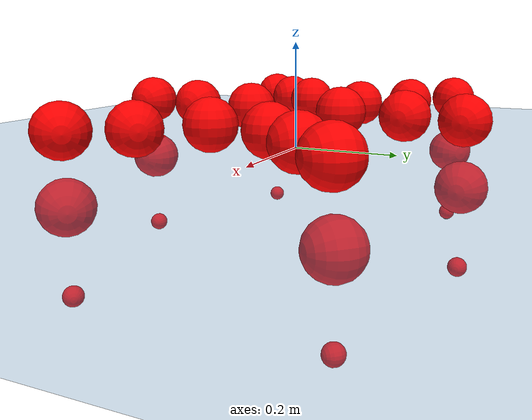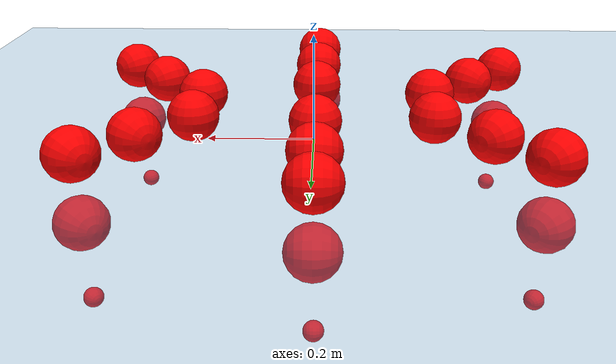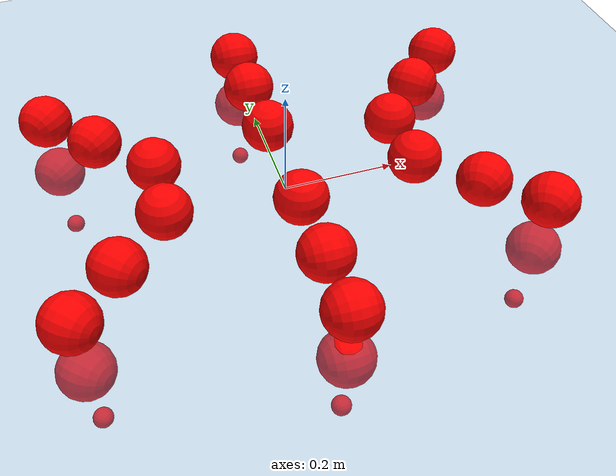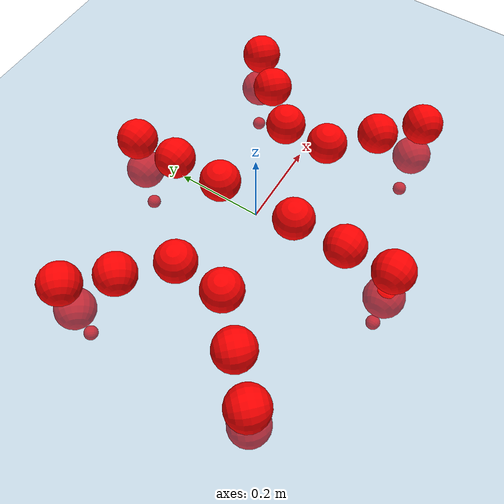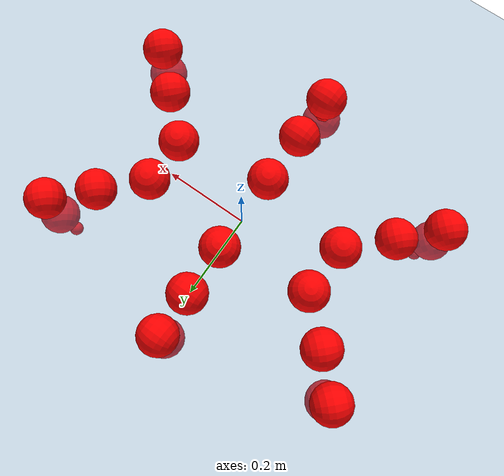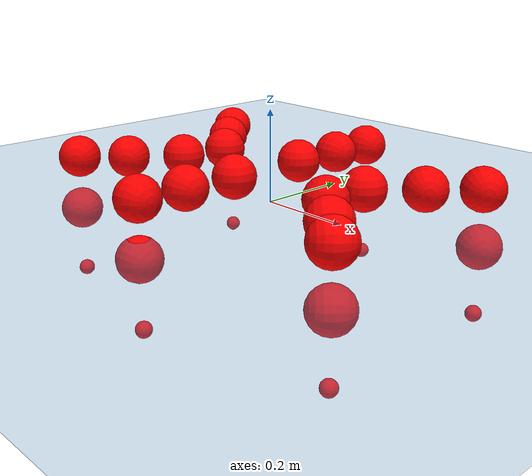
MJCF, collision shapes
<mujoco model="Golem">
  <compiler angle="radian" assetdir="assets" balanceinertia="true" inertiafromgeom="false"/>

  <option timestep="0.005" density="1.2" viscosity="2e-05"/>

  <size nkey="1"/>

  <visual>
    <quality shadowsize="8192"/>
    <map shadowclip="0.5"/>
  </visual>

  <default>
    <default class="/">
      <joint armature="0.01" damping="0.01" frictionloss="0.01"/>
      <geom contype="0" conaffinity="0" group="1" solref="-1000 -80"/>
      <site size="0.01 0.005 0.005" group="5"/>
      <general forcelimited="true" biastype="affine" gainprm="25" biasprm="0 -25 -0.5"/>
      <default class="visual">
        <geom type="mesh" group="2"/>
      </default>
      <default class="collision">
        <geom group="3"/>
      </default>
      <default class="foot">
        <geom size="0.01 0 0" condim="6" group="4" priority="1" solimp="0.015 1 0.01"/>
      </default>
      <default class="reward_collision_sphere">
        <geom group="5" rgba="1 0 0 1"/>
      </default>
    </default>
  </default>

  <asset>
    <texture type="skybox" colorspace="auto" name="//unnamed_texture_0" builtin="gradient" rgb1="0.95 0.95 0.95" rgb2="0.95 0.95 0.95" width="100" height="600"/>
    <texture type="2d" colorspace="auto" name="texplane" builtin="checker" rgb1="0.345 0.575 0.748" rgb2="0.345 0.575 0.748" markrgb="1 1 1" width="512" height="512"/>
    <material name="MatPlane" class="/" texture="texplane" texuniform="true" texrepeat="2 2" specular="0.9"/>
    <mesh name="body" class="/" file="body.stl" scale="0.001 0.001 0.001"/>
    <mesh name="coxa" class="/" file="coxa.stl" scale="0.001 0.001 0.001"/>
    <mesh name="femur" class="/" file="femur.stl" scale="0.001 0.001 0.001"/>
    <mesh name="tibia" class="/" file="tibia.stl" scale="0.001 0.001 0.001"/>
    <mesh name="tarsus" class="/" file="tarsus.stl" scale="0.001 0.001 0.001"/>
  </asset>

  <worldbody>
    <geom name="floor" class="/" size="100 100 0.125" type="plane" group="0" material="MatPlane"/>
    <light name="toplight_shadow" class="/" pos="0 0 5" dir="0.0990148 0.0990148 -0.990148" type="directional" ambient="0.04 0.04 0.04" diffuse="0.55 0.55 0.55" specular="0.12 0.12 0.12"/>
    <light name="toplight_fill" class="/" pos="0 0 5" dir="0.0990148 0.0990148 -0.990148" type="directional" castshadow="false" ambient="0.04 0.04 0.04" diffuse="0.3 0.3 0.3" specular="0.08 0.08 0.08"/>
    <body name="trunk" pos="-0.00233903 -0.00258842 0.00114054" quat="0.999999 0.00114539 0.000556397 0.000517544">
      <inertial pos="0.00268963 0.000275476 0.000223459" quat="0.99992 -0.0016654 -0.00996308 -0.00764176" mass="5.97925" diaginertia="0.0500732 0.0119556 0.0153129"/>
      <joint name="//unnamed_joint_0" type="free"/>
      <geom name="//unnamed_geom_1" class="/" pos="0 0 0.0689017" quat="1 0 0 0" type="mesh" rgba="0.9 0.9 0.9 1" mesh="body"/>
      <site name="imu" class="/" pos="0.184445 0.0117451 0.110031" size="0.0115885"/>
      <camera name="track" class="/" pos="0 -2.05239 0" quat="0.707107 0.707107 0 0" mode="trackcom"/>
      <camera name="ego_camera" class="/" pos="0.178588 0 0.107659" quat="-0.5 -0.5 0.5 0.5"/>
      <body name="coxa_RR" pos="-0.246522 -0.086299 0.0706602" quat="0.382598 -0.000846744 -0.000699572 -0.923914">
        <inertial pos="-0.000143563 0.000579436 0.00257363" quat="0.999997 0.00190555 0.000714038 0.000985972" mass="0.318173" diaginertia="0.0485807 0.0115605 0.0150978"/>
        <joint name="coxa_joint_RR" class="/" pos="0 0 0" axis="0.00104718 0.00502365 -0.999987" range="-3.13007 3.08467" armature="0.0111311" damping="0.00632835" frictionloss="0.011829"/>
        <geom name="//unnamed_geom_2" class="/" type="mesh" rgba="0.2 0.2 0.2 1" mesh="coxa"/>
        <geom name="//unnamed_geom_3" class="reward_collision_sphere" size="0.0463539" pos="-0.0412127 0 0"/>
        <body name="femur_RR" pos="0.0828746 -0.00114938 -0.00402834" quat="0.500567 -0.499894 0.499976 0.499562">
          <inertial pos="0.000616429 0.000311325 0.00160567" quat="0.999988 -0.0043039 0.00207535 -0.000674193" mass="0.306811" diaginertia="0.0486156 0.0113133 0.0142288"/>
          <joint name="femur_joint_RR" class="/" pos="0 0 0" axis="-0.01031 -0.00823249 -0.999913" range="-3.1816 3.1316" armature="0.0120841" damping="0.0228352" frictionloss="0.0118569"/>
          <geom name="//unnamed_geom_4" class="/" type="mesh" rgba="0.9 0.9 0.9 1" mesh="femur"/>
          <geom name="//unnamed_geom_5" class="reward_collision_sphere" size="0.0463539"/>
          <body name="tibia_RR" pos="0.00121101 -0.111431 0.00100601" quat="-0.000189412 1 -2.99033e-05 6.46327e-05">
            <inertial pos="-0.00066435 0.000662987 -0.000872505" quat="0.999915 0.0119632 0.00490219 0.00162778" mass="0.313599" diaginertia="0.0469206 0.0113533 0.0141285"/>
            <joint name="tibia_joint_RR" class="/" pos="0 0 0" axis="0.00542589 0.00543365 0.999971" range="-3.19081 3.13175" armature="0.0100202" damping="0" frictionloss="0.0106352"/>
            <geom name="//unnamed_geom_6" class="/" type="mesh" rgba="0.2 0.2 0.2 1" mesh="tibia"/>
            <geom name="//unnamed_geom_7" class="reward_collision_sphere" size="0.0463539"/>
            <body name="tarsus_RR" pos="0.121324 0.0025982 -0.00130545" quat="1 0.000304046 -1.78098e-05 6.35945e-05">
              <inertial pos="0.0807745 0.00012953 -0.0012284" quat="0.497157 0.503773 0.499783 0.499264" mass="0.29504" diaginertia="0.0491062 0.0109076 0.0141497"/>
              <joint name="tarsus_joint_RR" class="/" pos="0 0 0" axis="0.00458646 0.00446761 0.99998" stiffness="0.00197812" range="-3.125 3.09112" armature="0.00996963" damping="0.040625" frictionloss="0.0128084"/>
              <geom name="//unnamed_geom_8" class="/" type="mesh" rgba="0.9 0.9 0.9 1" mesh="tarsus"/>
              <geom name="foot_1" class="foot" size="0.0112374" pos="0.153861 0 0" quat="0 -0.707107 0 0.707107"/>
              <geom name="//unnamed_geom_10" class="reward_collision_sphere" size="0.0463539"/>
              <geom name="//unnamed_geom_11" class="reward_collision_sphere" size="0.0173827" pos="0.147679 0 0"/>
              <site name="foot_1" class="foot" pos="0.153861 0 0" quat="0 -0.707107 0 0.707107" size="0.0115885"/>
            </body>
          </body>
        </body>
      </body>
      <body name="coxa_RM" pos="-0.0012075 -0.135881 0.0739091" quat="0.706824 8.69115e-05 -0.00022944 -0.707389">
        <inertial pos="-0.00127946 -0.000771939 -0.000144166" quat="0.999959 -0.00613162 -0.00664974 0.000817367" mass="0.310525" diaginertia="0.0480157 0.0113787 0.013791"/>
        <joint name="coxa_joint_RM" class="/" pos="0 0 0" axis="-0.000119563 0.00788232 -0.999969" stiffness="0.00632377" range="-3.16489 3.13781" armature="0.0118674" damping="0.0129774" frictionloss="0.00999625"/>
        <geom name="//unnamed_geom_12" class="/" type="mesh" rgba="0.2 0.2 0.2 1" mesh="coxa"/>
        <geom name="//unnamed_geom_13" class="reward_collision_sphere" size="0.0463539" pos="-0.0412127 0 0"/>
        <body name="femur_RM" pos="0.0822118 -0.00126414 0.00216585" quat="0.500496 -0.500035 0.499084 0.500384">
          <inertial pos="-7.40847e-05 -0.000150539 -0.00012326" quat="0.999995 -0.0026557 -0.00140173 0.00096589" mass="0.304003" diaginertia="0.0500224 0.0111643 0.014299"/>
          <joint name="femur_joint_RM" class="/" pos="0 0 0" axis="0.00492138 -0.00386261 -0.99998" range="-3.15969 3.136" armature="0.0130083" damping="0.0258056" frictionloss="0.0116948"/>
          <geom name="//unnamed_geom_14" class="/" type="mesh" rgba="0.9 0.9 0.9 1" mesh="femur"/>
          <geom name="//unnamed_geom_15" class="reward_collision_sphere" size="0.0463539"/>
          <body name="tibia_RM" pos="-0.00248333 -0.110054 -0.000842211" quat="-0.000117729 1 0.000136899 0.000276">
            <inertial pos="0.000780336 0.0028753 -0.00253755" quat="0.999993 -0.00130169 -0.000178954 -0.00346781" mass="0.328947" diaginertia="0.0510126 0.0113556 0.0148919"/>
            <joint name="tibia_joint_RM" class="/" pos="0 0 0" axis="-0.00125796 0.0105368 0.999944" range="-3.15931 3.08523" armature="0.011738" damping="0.012623" frictionloss="0.0100607"/>
            <geom name="//unnamed_geom_16" class="/" type="mesh" rgba="0.2 0.2 0.2 1" mesh="tibia"/>
            <geom name="//unnamed_geom_17" class="reward_collision_sphere" size="0.0463539"/>
            <body name="tarsus_RM" pos="0.120687 0.00216289 0.00139065" quat="1 -0.000323475 -3.0243e-05 0.000336602">
              <inertial pos="0.0816102 -0.00182758 0.000647878" quat="0.506011 0.496599 0.498301 0.499037" mass="0.319068" diaginertia="0.0499731 0.0117559 0.0152295"/>
              <joint name="tarsus_joint_RM" class="/" pos="0 0 0" axis="0.00844703 0.00208756 0.999962" stiffness="0.00488946" range="-3.15283 3.13648" armature="0.0115909" damping="0.00847798" frictionloss="0.0112275"/>
              <geom name="//unnamed_geom_18" class="/" type="mesh" rgba="0.9 0.9 0.9 1" mesh="tarsus"/>
              <geom name="foot_2" class="foot" size="0.0115462" pos="0.153861 0 0" quat="0 -0.707107 0 0.707107"/>
              <geom name="//unnamed_geom_20" class="reward_collision_sphere" size="0.0463539"/>
              <geom name="//unnamed_geom_21" class="reward_collision_sphere" size="0.0173827" pos="0.147679 0 0"/>
              <site name="foot_2" class="foot" pos="0.153861 0 0" quat="0 -0.707107 0 0.707107" size="0.0115885"/>
            </body>
          </body>
        </body>
      </body>
      <body name="coxa_RF" pos="0.2451 -0.0848008 0.0682643" quat="0.923948 -7.44013e-05 4.26746e-05 -0.382518">
        <inertial pos="0.00130385 0.00126891 -0.000673696" quat="0.999986 -0.000255143 -0.00186091 -0.0050286" mass="0.313208" diaginertia="0.0521736 0.0117619 0.0148637"/>
        <joint name="coxa_joint_RF" class="/" pos="0 0 0" axis="-0.00174612 0.00140266 -0.999997" range="-3.19387 3.13226" armature="0.0125449" damping="0.0110589" frictionloss="0.0101736"/>
        <geom name="//unnamed_geom_22" class="/" type="mesh" rgba="0.2 0.2 0.2 1" mesh="coxa"/>
        <geom name="//unnamed_geom_23" class="reward_collision_sphere" size="0.0463539" pos="-0.0412127 0 0"/>
        <body name="femur_RF" pos="0.0811904 0.00178973 0.000213988" quat="0.500648 -0.499204 0.500434 0.499712">
          <inertial pos="0.00265895 -0.000625969 0.00271358" quat="0.999997 -0.00131407 -0.000502858 -0.00196173" mass="0.303936" diaginertia="0.0506325 0.0112692 0.0145269"/>
          <joint name="femur_joint_RF" class="/" pos="0 0 0" axis="0.0123716 0.00345054 -0.999918" stiffness="0.00590738" range="-3.12186 3.09238" armature="0.0116945" damping="0.0149827" frictionloss="0.0104873"/>
          <geom name="//unnamed_geom_24" class="/" type="mesh" rgba="0.9 0.9 0.9 1" mesh="femur"/>
          <geom name="//unnamed_geom_25" class="reward_collision_sphere" size="0.0463539"/>
          <body name="tibia_RF" pos="-0.00311287 -0.110057 0.00103036" quat="-0.000281565 1 -8.78336e-06 -2.25519e-05">
            <inertial pos="0.000122749 -0.00149324 0.000398399" quat="0.999913 0.0110476 0.00665548 -0.00290804" mass="0.318051" diaginertia="0.0489375 0.0112672 0.0142614"/>
            <joint name="tibia_joint_RF" class="/" pos="0 0 0" axis="0.00250267 -0.0063253 0.999977" stiffness="0.000199649" range="-3.15562 3.09855" armature="0.0115896" damping="0.0294183" frictionloss="0.0111024"/>
            <geom name="//unnamed_geom_26" class="/" type="mesh" rgba="0.2 0.2 0.2 1" mesh="tibia"/>
            <geom name="//unnamed_geom_27" class="reward_collision_sphere" size="0.0463539"/>
            <body name="tarsus_RF" pos="0.120056 0.00032341 -0.000506615" quat="0.999999 -0.000628646 -0.000965003 0.00024731">
              <inertial pos="0.082592 -0.000133284 0.00127368" quat="0.497069 0.502894 0.495271 0.504705" mass="0.319485" diaginertia="0.0503498 0.0111777 0.0141473"/>
              <joint name="tarsus_joint_RF" class="/" pos="0 0 0" axis="0.00650555 0.00300688 0.999974" range="-3.1956 3.14584" armature="0.0124758" damping="0.00302101" frictionloss="0.0107916"/>
              <geom name="//unnamed_geom_28" class="/" type="mesh" rgba="0.9 0.9 0.9 1" mesh="tarsus"/>
              <geom name="foot_3" class="foot" size="0.0115678" pos="0.153861 0 0" quat="0 -0.707107 0 0.707107"/>
              <geom name="//unnamed_geom_30" class="reward_collision_sphere" size="0.0463539"/>
              <geom name="//unnamed_geom_31" class="reward_collision_sphere" size="0.0173827" pos="0.147679 0 0"/>
              <site name="foot_3" class="foot" pos="0.153861 0 0" quat="0 -0.707107 0 0.707107" size="0.0115885"/>
            </body>
          </body>
        </body>
      </body>
      <body name="coxa_LR" pos="-0.242511 0.0887619 0.0666329" quat="0.382693 0.000123518 0.000144743 0.923876">
        <inertial pos="-0.000400573 0.00160161 0.00107511" quat="0.999967 0.00237857 -0.00450438 0.00639246" mass="0.314379" diaginertia="0.050119 0.0116051 0.0150806"/>
        <joint name="coxa_joint_LR" class="/" pos="0 0 0" axis="-0.00219008 -0.00161152 -0.999996" stiffness="0.00763479" range="-3.18316 3.11724" armature="0.012595" damping="0.010611" frictionloss="0.0121933"/>
        <geom name="//unnamed_geom_32" class="/" type="mesh" rgba="0.2 0.2 0.2 1" mesh="coxa"/>
        <geom name="//unnamed_geom_33" class="reward_collision_sphere" size="0.0463539" pos="-0.0412127 0 0"/>
        <body name="femur_LR" pos="0.0819866 0.0019221 0.00114914" quat="0.499848 -0.500065 0.500078 0.500008">
          <inertial pos="0.00110356 0.000302059 0.000217798" quat="0.999912 0.0115582 -0.00550664 0.00332942" mass="0.30073" diaginertia="0.0456786 0.0108042 0.0138999"/>
          <joint name="femur_joint_LR" class="/" pos="0 0 0" axis="-0.0105356 -0.00131712 0.999944" range="-3.15804 3.10585" armature="0.0127877" damping="0.00323993" frictionloss="0.0102895"/>
          <geom name="//unnamed_geom_34" class="/" type="mesh" rgba="0.9 0.9 0.9 1" mesh="femur"/>
          <geom name="//unnamed_geom_35" class="reward_collision_sphere" size="0.0463539"/>
          <body name="tibia_LR" pos="-0.000290253 -0.111364 -0.00282733" quat="0.00038707 1 0.000734909 0.000169787">
            <inertial pos="0.00243509 -0.000310123 -0.00014225" quat="0.999973 0.00303291 -0.00662144 0.00038057" mass="0.305979" diaginertia="0.0485271 0.0116557 0.0147872"/>
            <joint name="tibia_joint_LR" class="/" pos="0 0 0" axis="0.00800166 -0.00378654 -0.999961" stiffness="0.0053811" range="-3.13174 3.13371" armature="0.0130612" damping="0.00979279" frictionloss="0.0131292"/>
            <geom name="//unnamed_geom_36" class="/" type="mesh" rgba="0.2 0.2 0.2 1" mesh="tibia"/>
            <geom name="//unnamed_geom_37" class="reward_collision_sphere" size="0.0463539"/>
            <body name="tarsus_LR" pos="0.122118 -0.0012617 -0.00236982" quat="0.999999 -0.000372848 -0.000123369 -0.00130016">
              <inertial pos="0.0799724 -0.00228132 -0.00255411" quat="0.495045 0.504103 0.508985 0.491675" mass="0.318681" diaginertia="0.0496818 0.0115984 0.0148426"/>
              <joint name="tarsus_joint_LR" class="/" pos="0 0 0" axis="0.000203872 0.000317437 -1" stiffness="0.00522394" range="-3.15879 3.11395" armature="0.0122101" damping="0.0279322" frictionloss="0.0101255"/>
              <geom name="//unnamed_geom_38" class="/" type="mesh" rgba="0.9 0.9 0.9 1" mesh="tarsus"/>
              <geom name="foot_4" class="foot" size="0.0124092" pos="0.153861 0 0" quat="0.707107 0 -0.707107 0"/>
              <geom name="//unnamed_geom_40" class="reward_collision_sphere" size="0.0463539"/>
              <geom name="//unnamed_geom_41" class="reward_collision_sphere" size="0.0173827" pos="0.147679 0 0"/>
              <site name="foot_4" class="foot" pos="0.153861 0 0" quat="0.707107 0 -0.707107 0" size="0.0115885"/>
            </body>
          </body>
        </body>
      </body>
      <body name="coxa_LM" pos="-0.00238421 0.132783 0.0722016" quat="0.707662 0.000546297 4.88631e-05 0.706551">
        <inertial pos="0.00115881 -0.000386598 -0.00230231" quat="0.999982 -0.00155905 0.00370407 0.00435982" mass="0.311202" diaginertia="0.0497001 0.0118473 0.0151256"/>
        <joint name="coxa_joint_LM" class="/" pos="0 0 0" axis="-0.000176487 -0.000172849 -1" range="-3.12256 3.13276" armature="0.0107238" damping="0" frictionloss="0.0129703"/>
        <geom name="//unnamed_geom_42" class="/" type="mesh" rgba="0.2 0.2 0.2 1" mesh="coxa"/>
        <geom name="//unnamed_geom_43" class="reward_collision_sphere" size="0.0463539" pos="-0.0412127 0 0"/>
        <body name="femur_LM" pos="0.0798359 0.00187137 -0.00195067" quat="0.500777 -0.499527 0.500013 0.499682">
          <inertial pos="-0.00124896 0.000152898 -0.000299212" quat="0.999916 -0.00783559 -0.00177058 -0.0101931" mass="0.321462" diaginertia="0.0492649 0.0116956 0.0148278"/>
          <joint name="femur_joint_LM" class="/" pos="0 0 0" axis="0.00256369 -0.00199805 0.999995" range="-3.09084 3.1809" armature="0.0130636" damping="0" frictionloss="0.0114753"/>
          <geom name="//unnamed_geom_44" class="/" type="mesh" rgba="0.9 0.9 0.9 1" mesh="femur"/>
          <geom name="//unnamed_geom_45" class="reward_collision_sphere" size="0.0463539"/>
          <body name="tibia_LM" pos="0.00270797 -0.105969 0.00117827" quat="0.000480979 1 0.00040019 -0.000592377">
            <inertial pos="-0.00062322 -0.00125458 -0.00161846" quat="0.999998 -0.00164843 0.00110312 -0.000602485" mass="0.313152" diaginertia="0.047728 0.0114259 0.0149641"/>
            <joint name="tibia_joint_LM" class="/" pos="0 0 0" axis="0.000564993 -0.0126775 -0.999919" range="-3.09612 3.13415" armature="0.0129238" damping="0.0110274" frictionloss="0.0106046"/>
            <geom name="//unnamed_geom_46" class="/" type="mesh" rgba="0.2 0.2 0.2 1" mesh="tibia"/>
            <geom name="//unnamed_geom_47" class="reward_collision_sphere" size="0.0463539"/>
            <body name="tarsus_LM" pos="0.118215 -0.00117662 0.00128949" quat="0.999999 -0.00122799 0.00024858 -0.000107642">
              <inertial pos="0.0851175 0.00234681 0.00251129" quat="0.49977 0.500107 0.50027 0.499852" mass="0.307751" diaginertia="0.0485153 0.0109722 0.0138235"/>
              <joint name="tarsus_joint_LM" class="/" pos="0 0 0" axis="-0.00477358 -0.00342279 -0.999983" stiffness="0.00168681" range="-3.09584 3.1441" armature="0.0113745" damping="0.0161296" frictionloss="0.0118483"/>
              <geom name="//unnamed_geom_48" class="/" type="mesh" rgba="0.9 0.9 0.9 1" mesh="tarsus"/>
              <geom name="foot_5" class="foot" size="0.0116687" pos="0.153861 0 0" quat="0.707107 0 -0.707107 0"/>
              <geom name="//unnamed_geom_50" class="reward_collision_sphere" size="0.0463539"/>
              <geom name="//unnamed_geom_51" class="reward_collision_sphere" size="0.0173827" pos="0.147679 0 0"/>
              <site name="foot_5" class="foot" pos="0.153861 0 0" quat="0.707107 0 -0.707107 0" size="0.0115885"/>
            </body>
          </body>
        </body>
      </body>
      <body name="coxa_LF" pos="0.245664 0.0830418 0.065271" quat="0.923846 4.07345e-05 9.24393e-05 0.382764">
        <inertial pos="-0.000580822 -0.000925545 0.00106343" quat="0.99999 -0.00225981 0.00382333 0.00044849" mass="0.301456" diaginertia="0.0467457 0.0114536 0.0141418"/>
        <joint name="coxa_joint_LF" class="/" pos="0 0 0" axis="0.0122852 0.00740209 -0.999897" range="-3.13251 3.13023" armature="0.0104709" damping="0.0271035" frictionloss="0.012869"/>
        <geom name="//unnamed_geom_52" class="/" type="mesh" rgba="0.2 0.2 0.2 1" mesh="coxa"/>
        <geom name="//unnamed_geom_53" class="reward_collision_sphere" size="0.0463539" pos="-0.0412127 0 0"/>
        <body name="femur_LF" pos="0.0792506 0.00263738 -2.81131e-05" quat="0.500483 -0.499695 0.499649 0.500172">
          <inertial pos="0.00223764 -0.00170225 -0.00151732" quat="0.999995 -0.00214756 -0.00246884 -0.000155284" mass="0.310249" diaginertia="0.0473194 0.0111049 0.0145075"/>
          <joint name="femur_joint_LF" class="/" pos="0 0 0" axis="-0.00476276 0.00454323 0.999978" stiffness="0.003814" range="-3.12645 3.15156" armature="0.0117823" damping="0" frictionloss="0.0126306"/>
          <geom name="//unnamed_geom_54" class="/" type="mesh" rgba="0.9 0.9 0.9 1" mesh="femur"/>
          <geom name="//unnamed_geom_55" class="reward_collision_sphere" size="0.0463539"/>
          <body name="tibia_LF" pos="-0.000295441 -0.11336 0.00111774" quat="0.000239187 1 3.99175e-05 3.01858e-06">
            <inertial pos="0.00180069 0.000263651 -6.57285e-06" quat="0.999993 0.00163758 0.000929738 -0.0031506" mass="0.314856" diaginertia="0.0472619 0.0113596 0.0140109"/>
            <joint name="tibia_joint_LF" class="/" pos="0 0 0" axis="-0.00494892 -0.00386952 -0.99998" stiffness="0.000348034" range="-3.16054 3.12684" armature="0.0129203" damping="0" frictionloss="0.011664"/>
            <geom name="//unnamed_geom_56" class="/" type="mesh" rgba="0.2 0.2 0.2 1" mesh="tibia"/>
            <geom name="//unnamed_geom_57" class="reward_collision_sphere" size="0.0463539"/>
            <body name="tarsus_LF" pos="0.122603 0.00211975 -0.00339093" quat="1 -0.000386328 -8.2768e-05 0.000826703">
              <inertial pos="0.0808458 7.67023e-05 0.000723474" quat="0.500789 0.500782 0.499322 0.499105" mass="0.308643" diaginertia="0.0504316 0.011708 0.0143829"/>
              <joint name="tarsus_joint_LF" class="/" pos="0 0 0" axis="0.00384731 0.00562747 -0.999977" stiffness="0.0299756" range="-3.08912 3.11699" armature="0.0130878" damping="0.0285699" frictionloss="0.0131802"/>
              <geom name="//unnamed_geom_58" class="/" type="mesh" rgba="0.9 0.9 0.9 1" mesh="tarsus"/>
              <geom name="foot_6" class="foot" size="0.0111193" pos="0.153861 0 0" quat="0.707107 0 -0.707107 0"/>
              <geom name="//unnamed_geom_60" class="reward_collision_sphere" size="0.0463539"/>
              <geom name="//unnamed_geom_61" class="reward_collision_sphere" size="0.0173827" pos="0.147679 0 0"/>
              <site name="foot_6" class="foot" pos="0.153861 0 0" quat="0.707107 0 -0.707107 0" size="0.0115885"/>
            </body>
          </body>
        </body>
      </body>
    </body>
  </worldbody>

  <contact>
    <pair class="/" geom1="floor" geom2="foot_1" name="//unnamed_contact_0"/>
    <pair class="/" geom1="floor" geom2="foot_2" name="//unnamed_contact_1"/>
    <pair class="/" geom1="floor" geom2="foot_3" name="//unnamed_contact_2"/>
    <pair class="/" geom1="floor" geom2="foot_4" name="//unnamed_contact_3"/>
    <pair class="/" geom1="floor" geom2="foot_5" name="//unnamed_contact_4"/>
    <pair class="/" geom1="floor" geom2="foot_6" name="//unnamed_contact_5"/>
  </contact>

  <actuator>
    <general name="coxa_joint_RR" class="/" joint="coxa_joint_RR" forcerange="-8.58706 8.58706" gainprm="28.0733" biasprm="0 -28.0733 -0.55306"/>
    <general name="femur_joint_RR" class="/" joint="femur_joint_RR" forcerange="-9.33863 9.33863" gainprm="28.0733" biasprm="0 -28.0733 -0.55306"/>
    <general name="tibia_joint_RR" class="/" joint="tibia_joint_RR" forcerange="-8.85862 8.85862" gainprm="28.0733" biasprm="0 -28.0733 -0.55306"/>
    <general name="tarsus_joint_RR" class="/" joint="tarsus_joint_RR" forcerange="-9.31338 9.31338" gainprm="28.0733" biasprm="0 -28.0733 -0.55306"/>
    <general name="coxa_joint_RM" class="/" joint="coxa_joint_RM" forcerange="-8.43648 8.43648" gainprm="28.0733" biasprm="0 -28.0733 -0.55306"/>
    <general name="femur_joint_RM" class="/" joint="femur_joint_RM" forcerange="-8.54212 8.54212" gainprm="28.0733" biasprm="0 -28.0733 -0.55306"/>
    <general name="tibia_joint_RM" class="/" joint="tibia_joint_RM" forcerange="-8.34673 8.34673" gainprm="28.0733" biasprm="0 -28.0733 -0.55306"/>
    <general name="tarsus_joint_RM" class="/" joint="tarsus_joint_RM" forcerange="-8.16219 8.16219" gainprm="28.0733" biasprm="0 -28.0733 -0.55306"/>
    <general name="coxa_joint_RF" class="/" joint="coxa_joint_RF" forcerange="-8.93833 8.93833" gainprm="28.0733" biasprm="0 -28.0733 -0.55306"/>
    <general name="femur_joint_RF" class="/" joint="femur_joint_RF" forcerange="-8.76399 8.76399" gainprm="28.0733" biasprm="0 -28.0733 -0.55306"/>
    <general name="tibia_joint_RF" class="/" joint="tibia_joint_RF" forcerange="-8.40683 8.40683" gainprm="28.0733" biasprm="0 -28.0733 -0.55306"/>
    <general name="tarsus_joint_RF" class="/" joint="tarsus_joint_RF" forcerange="-9.33389 9.33389" gainprm="28.0733" biasprm="0 -28.0733 -0.55306"/>
    <general name="coxa_joint_LR" class="/" joint="coxa_joint_LR" forcerange="-8.47022 8.47022" gainprm="28.0733" biasprm="0 -28.0733 -0.55306"/>
    <general name="femur_joint_LR" class="/" joint="femur_joint_LR" forcerange="-8.0696 8.0696" gainprm="28.0733" biasprm="0 -28.0733 -0.55306"/>
    <general name="tibia_joint_LR" class="/" joint="tibia_joint_LR" forcerange="-7.58537 7.58537" gainprm="28.0733" biasprm="0 -28.0733 -0.55306"/>
    <general name="tarsus_joint_LR" class="/" joint="tarsus_joint_LR" forcerange="-7.74234 7.74234" gainprm="28.0733" biasprm="0 -28.0733 -0.55306"/>
    <general name="coxa_joint_LM" class="/" joint="coxa_joint_LM" forcerange="-7.58529 7.58529" gainprm="28.0733" biasprm="0 -28.0733 -0.55306"/>
    <general name="femur_joint_LM" class="/" joint="femur_joint_LM" forcerange="-7.78782 7.78782" gainprm="28.0733" biasprm="0 -28.0733 -0.55306"/>
    <general name="tibia_joint_LM" class="/" joint="tibia_joint_LM" forcerange="-7.85561 7.85561" gainprm="28.0733" biasprm="0 -28.0733 -0.55306"/>
    <general name="tarsus_joint_LM" class="/" joint="tarsus_joint_LM" forcerange="-8.00648 8.00648" gainprm="28.0733" biasprm="0 -28.0733 -0.55306"/>
    <general name="coxa_joint_LF" class="/" joint="coxa_joint_LF" forcerange="-7.63787 7.63787" gainprm="28.0733" biasprm="0 -28.0733 -0.55306"/>
    <general name="femur_joint_LF" class="/" joint="femur_joint_LF" forcerange="-9.06447 9.06447" gainprm="28.0733" biasprm="0 -28.0733 -0.55306"/>
    <general name="tibia_joint_LF" class="/" joint="tibia_joint_LF" forcerange="-9.15934 9.15934" gainprm="28.0733" biasprm="0 -28.0733 -0.55306"/>
    <general name="tarsus_joint_LF" class="/" joint="tarsus_joint_LF" forcerange="-7.58744 7.58744" gainprm="28.0733" biasprm="0 -28.0733 -0.55306"/>
  </actuator>

  <sensor>
    <gyro site="imu" name="imu_angular_velocity"/>
    <velocimeter site="imu" name="imu_linear_velocity"/>
    <framelinvel objtype="site" objname="foot_1" name="foot_1_global_linear_velocity"/>
    <framelinvel objtype="site" objname="foot_2" name="foot_2_global_linear_velocity"/>
    <framelinvel objtype="site" objname="foot_3" name="foot_3_global_linear_velocity"/>
    <framelinvel objtype="site" objname="foot_4" name="foot_4_global_linear_velocity"/>
    <framelinvel objtype="site" objname="foot_5" name="foot_5_global_linear_velocity"/>
    <framelinvel objtype="site" objname="foot_6" name="foot_6_global_linear_velocity"/>
  </sensor>

  <keyframe>
    <key name="home" qpos="0 0 0.1457 1 0 0 0 0 0 0 0 0 0 0 0 0 0 0 0 0 0 0 0 0 0 0 0 0 0 0 0"/>
  </keyframe>
</mujoco>
